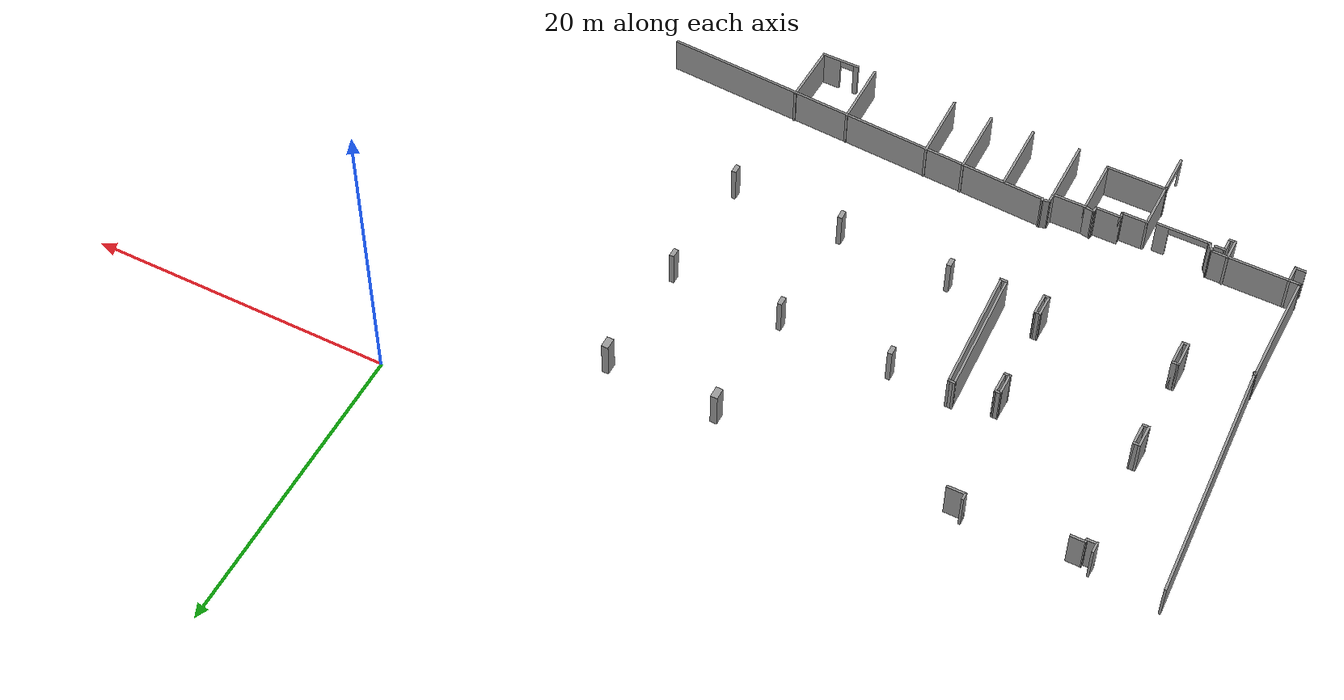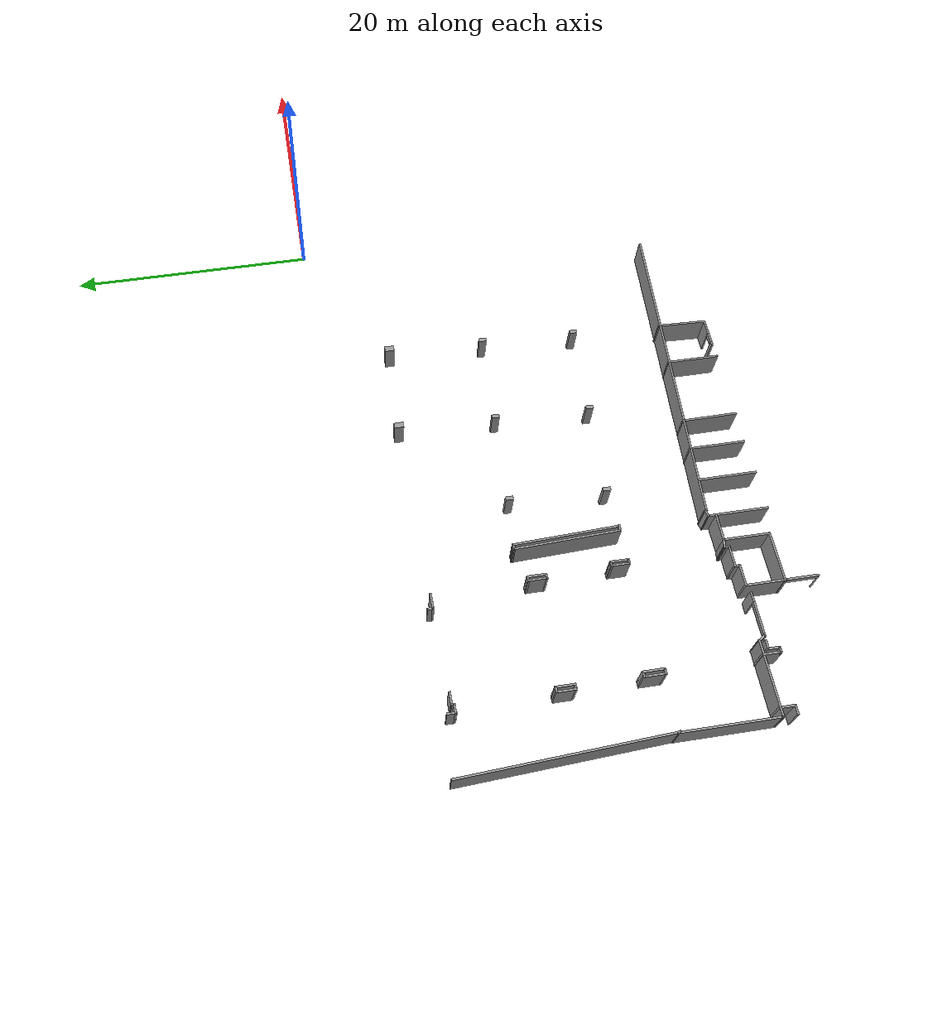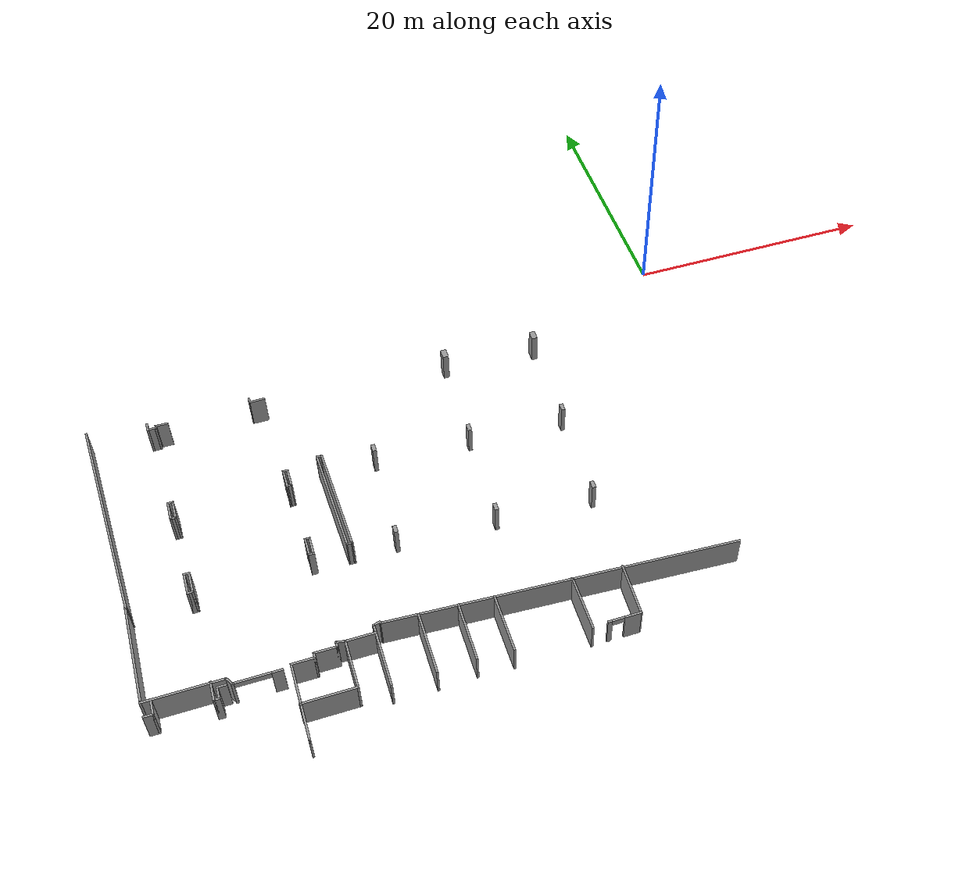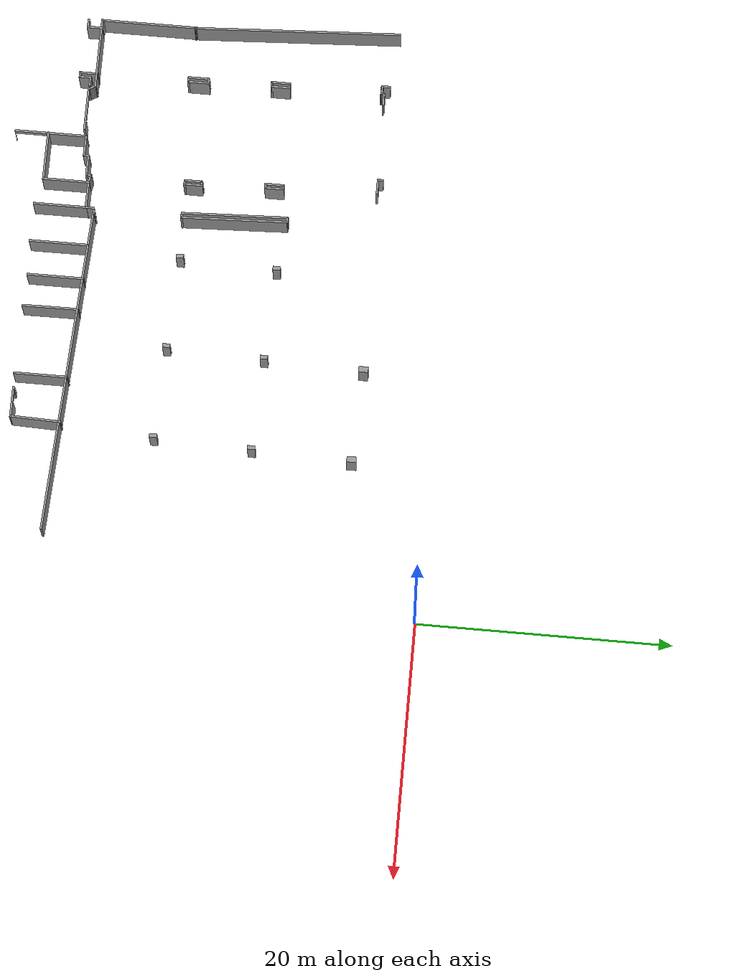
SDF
<sdf version="1.6">
 <model name="car_parking_underground_big_1">
  <pose>-9.36123 -7.37411 0 0 -0 0</pose>
  <link name="Wall_114">
   <collision name="Wall_114_Collision">
    <geometry><box><size>16.392 0.15 2.5</size></box></geometry>
    <pose>0 0 1.25 0 -0 0</pose>
   </collision>
   <visual name="Wall_114_Visual">
    <pose>0 0 1.25 0 -0 0</pose>
    <geometry><box><size>16.392 0.15 2.5</size></box></geometry>
    <material>
     <script><uri>file://media/materials/scripts/gazebo.material</uri><name>Gazebo/Grey</name></script>
     <ambient>1 1 1 1</ambient>
    </material>
    <meta><layer>0</layer></meta>
   </visual>
   <pose>-37.5898 -5.90433 0 0 -0 -1.51874</pose>
  </link>
  <link name="Wall_115">
   <collision name="Wall_115_Collision">
    <geometry><box><size>0.25 0.15 2.5</size></box></geometry>
    <pose>0 0 1.25 0 -0 0</pose>
   </collision>
   <visual name="Wall_115_Visual">
    <pose>0 0 1.25 0 -0 0</pose>
    <geometry><box><size>0.25 0.15 2.5</size></box></geometry>
    <material>
     <script><uri>file://media/materials/scripts/gazebo.material</uri><name>Gazebo/Grey</name></script>
     <ambient>1 1 1 1</ambient>
    </material>
    <meta><layer>0</layer></meta>
   </visual>
   <pose>-37.1543 -14.0626 0 0 -0 -1.309</pose>
  </link>
  <link name="Wall_116">
   <collision name="Wall_116_Collision">
    <geometry><box><size>0.25 0.15 2.5</size></box></geometry>
    <pose>0 0 1.25 0 -0 0</pose>
   </collision>
   <visual name="Wall_116_Visual">
    <pose>0 0 1.25 0 -0 0</pose>
    <geometry><box><size>0.25 0.15 2.5</size></box></geometry>
    <material>
     <script><uri>file://media/materials/scripts/gazebo.material</uri><name>Gazebo/Grey</name></script>
     <ambient>1 1 1 1</ambient>
    </material>
    <meta><layer>0</layer></meta>
   </visual>
   <pose>-37.1664 -14.0676 0 0 -0 2.0944</pose>
  </link>
  <link name="Wall_117">
   <collision name="Wall_117_Collision">
    <geometry><box><size>7.5 0.15 2.5</size></box></geometry>
    <pose>0 0 1.25 0 -0 0</pose>
   </collision>
   <visual name="Wall_117_Visual">
    <pose>0 0 1.25 0 -0 0</pose>
    <geometry><box><size>7.5 0.15 2.5</size></box></geometry>
    <material>
     <script><uri>file://media/materials/scripts/gazebo.material</uri><name>Gazebo/Grey</name></script>
     <ambient>1 1 1 1</ambient>
    </material>
    <meta><layer>0</layer></meta>
   </visual>
   <pose>-37.1914 -17.6993 0 0 -0 -1.5708</pose>
  </link>
  <link name="Wall_176">
   <collision name="Wall_176_Collision">
    <geometry><box><size>0.6 0.3 2.5</size></box></geometry>
    <pose>0 0 1.25 0 -0 0</pose>
   </collision>
   <visual name="Wall_176_Visual">
    <pose>0 0 1.25 0 -0 0</pose>
    <geometry><box><size>0.6 0.3 2.5</size></box></geometry>
    <material>
     <script><uri>file://media/materials/scripts/gazebo.material</uri><name>Gazebo/Grey</name></script>
     <ambient>1 1 1 1</ambient>
    </material>
    <meta><layer>0</layer></meta>
   </visual>
   <pose>-3.02477 -6.46489 0 0 -0 -1.5708</pose>
  </link>
  <link name="Wall_178">
   <collision name="Wall_178_Collision">
    <geometry><box><size>0.6 0.3 2.5</size></box></geometry>
    <pose>0 0 1.25 0 -0 0</pose>
   </collision>
   <visual name="Wall_178_Visual">
    <pose>0 0 1.25 0 -0 0</pose>
    <geometry><box><size>0.6 0.3 2.5</size></box></geometry>
    <material>
     <script><uri>file://media/materials/scripts/gazebo.material</uri><name>Gazebo/Grey</name></script>
     <ambient>1 1 1 1</ambient>
    </material>
    <meta><layer>0</layer></meta>
   </visual>
   <pose>-3.32656 -14.1644 0 0 -0 -1.5708</pose>
  </link>
  <link name="Wall_180">
   <collision name="Wall_180_Collision">
    <geometry><box><size>0.6 0.3 2.5</size></box></geometry>
    <pose>0 0 1.25 0 -0 0</pose>
   </collision>
   <visual name="Wall_180_Visual">
    <pose>0 0 1.25 0 -0 0</pose>
    <geometry><box><size>0.6 0.3 2.5</size></box></geometry>
    <material>
     <script><uri>file://media/materials/scripts/gazebo.material</uri><name>Gazebo/Grey</name></script>
     <ambient>1 1 1 1</ambient>
    </material>
    <meta><layer>0</layer></meta>
   </visual>
   <pose>-10.3966 -6.15368 0 0 -0 -1.5708</pose>
  </link>
  <link name="Wall_184">
   <collision name="Wall_184_Collision">
    <geometry><box><size>0.6 0.3 2.5</size></box></geometry>
    <pose>0 0 1.25 0 -0 0</pose>
   </collision>
   <visual name="Wall_184_Visual">
    <pose>0 0 1.25 0 -0 0</pose>
    <geometry><box><size>0.6 0.3 2.5</size></box></geometry>
    <material>
     <script><uri>file://media/materials/scripts/gazebo.material</uri><name>Gazebo/Grey</name></script>
     <ambient>1 1 1 1</ambient>
    </material>
    <meta><layer>0</layer></meta>
   </visual>
   <pose>-10.6831 -13.8534 0 0 -0 -1.5708</pose>
  </link>
  <link name="Wall_186">
   <collision name="Wall_186_Collision">
    <geometry><box><size>0.6 0.3 2.5</size></box></geometry>
    <pose>0 0 1.25 0 -0 0</pose>
   </collision>
   <visual name="Wall_186_Visual">
    <pose>0 0 1.25 0 -0 0</pose>
    <geometry><box><size>0.6 0.3 2.5</size></box></geometry>
    <material>
     <script><uri>file://media/materials/scripts/gazebo.material</uri><name>Gazebo/Grey</name></script>
     <ambient>1 1 1 1</ambient>
    </material>
    <meta><layer>0</layer></meta>
   </visual>
   <pose>-17.7349 -5.83126 0 0 -0 -1.5708</pose>
  </link>
  <link name="Wall_189">
   <collision name="Wall_189_Collision">
    <geometry><box><size>0.6 0.3 2.5</size></box></geometry>
    <pose>0 0 1.25 0 -0 0</pose>
   </collision>
   <visual name="Wall_189_Visual">
    <pose>0 0 1.25 0 -0 0</pose>
    <geometry><box><size>0.6 0.3 2.5</size></box></geometry>
    <material>
     <script><uri>file://media/materials/scripts/gazebo.material</uri><name>Gazebo/Grey</name></script>
     <ambient>1 1 1 1</ambient>
    </material>
    <meta><layer>0</layer></meta>
   </visual>
   <pose>-18.0746 -13.5004 0 0 -0 1.5708</pose>
  </link>
  <link name="Wall_199">
   <collision name="Wall_199_Collision">
    <geometry><box><size>0.5 0.15 2.5</size></box></geometry>
    <pose>0 0 1.25 0 -0 0</pose>
   </collision>
   <visual name="Wall_199_Visual">
    <pose>0 0 1.25 0 -0 0</pose>
    <geometry><box><size>0.5 0.15 2.5</size></box></geometry>
    <material>
     <script><uri>file://media/materials/scripts/gazebo.material</uri><name>Gazebo/Grey</name></script>
     <ambient>1 1 1 1</ambient>
    </material>
    <meta><layer>0</layer></meta>
   </visual>
   <pose>-21.7724 -5.37202 0 0 -0 -0.029577</pose>
  </link>
  <link name="Wall_200">
   <collision name="Wall_200_Collision">
    <geometry><box><size>8.48596 0.15 2.5</size></box></geometry>
    <pose>0 0 1.25 0 -0 0</pose>
   </collision>
   <visual name="Wall_200_Visual">
    <pose>0 0 1.25 0 -0 0</pose>
    <geometry><box><size>8.48596 0.15 2.5</size></box></geometry>
    <material>
     <script><uri>file://media/materials/scripts/gazebo.material</uri><name>Gazebo/Grey</name></script>
     <ambient>1 1 1 1</ambient>
    </material>
    <meta><layer>0</layer></meta>
   </visual>
   <pose>-21.4361 -9.52457 0 0 -0 -1.53208</pose>
  </link>
  <link name="Wall_201">
   <collision name="Wall_201_Collision">
    <geometry><box><size>0.5 0.15 2.5</size></box></geometry>
    <pose>0 0 1.25 0 -0 0</pose>
   </collision>
   <visual name="Wall_201_Visual">
    <pose>0 0 1.25 0 -0 0</pose>
    <geometry><box><size>0.5 0.15 2.5</size></box></geometry>
    <material>
     <script><uri>file://media/materials/scripts/gazebo.material</uri><name>Gazebo/Grey</name></script>
     <ambient>1 1 1 1</ambient>
    </material>
    <meta><layer>0</layer></meta>
   </visual>
   <pose>-21.4323 -13.6894 0 0 -0 3.14159</pose>
  </link>
  <link name="Wall_202">
   <collision name="Wall_202_Collision">
    <geometry><box><size>8.4963 0.15 2.5</size></box></geometry>
    <pose>0 0 1.25 0 -0 0</pose>
   </collision>
   <visual name="Wall_202_Visual">
    <pose>0 0 1.25 0 -0 0</pose>
    <geometry><box><size>8.4963 0.15 2.5</size></box></geometry>
    <material>
     <script><uri>file://media/materials/scripts/gazebo.material</uri><name>Gazebo/Grey</name></script>
     <ambient>1 1 1 1</ambient>
    </material>
    <meta><layer>0</layer></meta>
   </visual>
   <pose>-21.786 -9.51939 0 0 -0 1.60945</pose>
  </link>
  <link name="Wall_207">
   <collision name="Wall_207_Collision">
    <geometry><box><size>0.45 0.15 2.5</size></box></geometry>
    <pose>0 0 1.25 0 -0 0</pose>
   </collision>
   <visual name="Wall_207_Visual">
    <pose>0 0 1.25 0 -0 0</pose>
    <geometry><box><size>0.45 0.15 2.5</size></box></geometry>
    <material>
     <script><uri>file://media/materials/scripts/gazebo.material</uri><name>Gazebo/Grey</name></script>
     <ambient>1 1 1 1</ambient>
    </material>
    <meta><layer>0</layer></meta>
   </visual>
   <pose>-24.4571 -5.91874 0 0 -0 0.024395</pose>
  </link>
  <link name="Wall_208">
   <collision name="Wall_208_Collision">
    <geometry><box><size>1.54641 0.15 2.5</size></box></geometry>
    <pose>0 0 1.25 0 -0 0</pose>
   </collision>
   <visual name="Wall_208_Visual">
    <pose>0 0 1.25 0 -0 0</pose>
    <geometry><box><size>1.54641 0.15 2.5</size></box></geometry>
    <material>
     <script><uri>file://media/materials/scripts/gazebo.material</uri><name>Gazebo/Grey</name></script>
     <ambient>1 1 1 1</ambient>
    </material>
    <meta><layer>0</layer></meta>
   </visual>
   <pose>-24.2965 -6.61328 0 0 -0 -1.5721</pose>
  </link>
  <link name="Wall_209">
   <collision name="Wall_209_Collision">
    <geometry><box><size>0.45 0.15 2.5</size></box></geometry>
    <pose>0 0 1.25 0 -0 0</pose>
   </collision>
   <visual name="Wall_209_Visual">
    <pose>0 0 1.25 0 -0 0</pose>
    <geometry><box><size>0.45 0.15 2.5</size></box></geometry>
    <material>
     <script><uri>file://media/materials/scripts/gazebo.material</uri><name>Gazebo/Grey</name></script>
     <ambient>1 1 1 1</ambient>
    </material>
    <meta><layer>0</layer></meta>
   </visual>
   <pose>-24.4589 -7.31515 0 0 -0 -3.1172</pose>
  </link>
  <link name="Wall_210">
   <collision name="Wall_210_Collision">
    <geometry><box><size>1.54641 0.15 2.5</size></box></geometry>
    <pose>0 0 1.25 0 -0 0</pose>
   </collision>
   <visual name="Wall_210_Visual">
    <pose>0 0 1.25 0 -0 0</pose>
    <geometry><box><size>1.54641 0.15 2.5</size></box></geometry>
    <material>
     <script><uri>file://media/materials/scripts/gazebo.material</uri><name>Gazebo/Grey</name></script>
     <ambient>1 1 1 1</ambient>
    </material>
    <meta><layer>0</layer></meta>
   </visual>
   <pose>-24.5965 -6.6206 0 0 -0 1.56949</pose>
  </link>
  <link name="Wall_212">
   <collision name="Wall_212_Collision">
    <geometry><box><size>0.45 0.15 2.5</size></box></geometry>
    <pose>0 0 1.25 0 -0 0</pose>
   </collision>
   <visual name="Wall_212_Visual">
    <pose>0 0 1.25 0 -0 0</pose>
    <geometry><box><size>0.45 0.15 2.5</size></box></geometry>
    <material>
     <script><uri>file://media/materials/scripts/gazebo.material</uri><name>Gazebo/Grey</name></script>
     <ambient>1 1 1 1</ambient>
    </material>
    <meta><layer>0</layer></meta>
   </visual>
   <pose>-24.2099 -12.3657 0 0 -0 0</pose>
  </link>
  <link name="Wall_213">
   <collision name="Wall_213_Collision">
    <geometry><box><size>1.48852 0.15 2.5</size></box></geometry>
    <pose>0 0 1.25 0 -0 0</pose>
   </collision>
   <visual name="Wall_213_Visual">
    <pose>0 0 1.25 0 -0 0</pose>
    <geometry><box><size>1.48852 0.15 2.5</size></box></geometry>
    <material>
     <script><uri>file://media/materials/scripts/gazebo.material</uri><name>Gazebo/Grey</name></script>
     <ambient>1 1 1 1</ambient>
    </material>
    <meta><layer>0</layer></meta>
   </visual>
   <pose>-24.0521 -13.0349 0 0 -0 -1.5764</pose>
  </link>
  <link name="Wall_214">
   <collision name="Wall_214_Collision">
    <geometry><box><size>0.45 0.15 2.5</size></box></geometry>
    <pose>0 0 1.25 0 -0 0</pose>
   </collision>
   <visual name="Wall_214_Visual">
    <pose>0 0 1.25 0 -0 0</pose>
    <geometry><box><size>0.45 0.15 2.5</size></box></geometry>
    <material>
     <script><uri>file://media/materials/scripts/gazebo.material</uri><name>Gazebo/Grey</name></script>
     <ambient>1 1 1 1</ambient>
    </material>
    <meta><layer>0</layer></meta>
   </visual>
   <pose>-24.1944 -13.7157 0 0 -0 3.14159</pose>
  </link>
  <link name="Wall_215">
   <collision name="Wall_215_Collision">
    <geometry><box><size>1.48852 0.15 2.5</size></box></geometry>
    <pose>0 0 1.25 0 -0 0</pose>
   </collision>
   <visual name="Wall_215_Visual">
    <pose>0 0 1.25 0 -0 0</pose>
    <geometry><box><size>1.48852 0.15 2.5</size></box></geometry>
    <material>
     <script><uri>file://media/materials/scripts/gazebo.material</uri><name>Gazebo/Grey</name></script>
     <ambient>1 1 1 1</ambient>
    </material>
    <meta><layer>0</layer></meta>
   </visual>
   <pose>-24.3521 -13.0349 0 0 -0 1.56519</pose>
  </link>
  <link name="Wall_450">
   <collision name="Wall_450_Collision">
    <geometry><box><size>1.5 0.15 2.5</size></box></geometry>
    <pose>0 0 1.25 0 -0 0</pose>
   </collision>
   <visual name="Wall_450_Visual">
    <pose>0 0 1.25 0 -0 0</pose>
    <geometry><box><size>1.5 0.15 2.5</size></box></geometry>
    <material>
     <script><uri>file://media/materials/scripts/gazebo.material</uri><name>Gazebo/Grey</name></script>
     <ambient>1 1 1 1</ambient>
    </material>
    <meta><layer>0</layer></meta>
   </visual>
   <pose>-32.6445 -22.2111 0 0 -0 -1.5708</pose>
  </link>
  <link name="Wall_451">
   <collision name="Wall_451_Collision">
    <geometry><box><size>0.5 0.15 2.5</size></box></geometry>
    <pose>0 0 1.25 0 -0 0</pose>
   </collision>
   <visual name="Wall_451_Visual">
    <pose>0 0 1.25 0 -0 0</pose>
    <geometry><box><size>0.5 0.15 2.5</size></box></geometry>
    <material>
     <script><uri>file://media/materials/scripts/gazebo.material</uri><name>Gazebo/Grey</name></script>
     <ambient>1 1 1 1</ambient>
    </material>
    <meta><layer>0</layer></meta>
   </visual>
   <pose>-32.4695 -22.8861 0 0 -0 0</pose>
  </link>
  <link name="Wall_452">
   <collision name="Wall_452_Collision">
    <geometry><box><size>1 0.15 2.5</size></box></geometry>
    <pose>0 0 1.25 0 -0 0</pose>
   </collision>
   <visual name="Wall_452_Visual">
    <pose>0 0 1.25 0 -0 0</pose>
    <geometry><box><size>1 0.15 2.5</size></box></geometry>
    <material>
     <script><uri>file://media/materials/scripts/gazebo.material</uri><name>Gazebo/Grey</name></script>
     <ambient>1 1 1 1</ambient>
    </material>
    <meta><layer>0</layer></meta>
   </visual>
   <pose>-32.2945 -22.4611 0 0 -0 1.5708</pose>
  </link>
  <link name="Wall_453">
   <collision name="Wall_453_Collision">
    <geometry><box><size>0.75 0.15 2.5</size></box></geometry>
    <pose>0 0 1.25 0 -0 0</pose>
   </collision>
   <visual name="Wall_453_Visual">
    <pose>0 0 1.25 0 -0 0</pose>
    <geometry><box><size>0.75 0.15 2.5</size></box></geometry>
    <material>
     <script><uri>file://media/materials/scripts/gazebo.material</uri><name>Gazebo/Grey</name></script>
     <ambient>1 1 1 1</ambient>
    </material>
    <meta><layer>0</layer></meta>
   </visual>
   <pose>-31.9945 -22.0361 0 0 -0 0</pose>
  </link>
  <link name="Wall_459">
   <pose>-27.3513 -24.6777 0 0 -0 1.5708</pose>
   <visual name="Wall_459_Visual_0">
    <pose>-2.87461 0 1.25 0 -0 0</pose>
    <geometry><box><size>0.000771 0.15 2.5</size></box></geometry>
    <material>
     <script><uri>file://media/materials/scripts/gazebo.material</uri><name>Gazebo/Grey</name></script>
     <ambient>1 1 1 1</ambient>
    </material>
    <meta><layer>0</layer></meta>
   </visual>
   <collision name="Wall_459_Collision_0">
    <geometry><box><size>0.000771 0.15 2.5</size></box></geometry>
    <pose>-2.87461 0 1.25 0 -0 0</pose>
   </collision>
   <visual name="Wall_459_Visual_1">
    <pose>1.25039 0 1.25 0 -0 0</pose>
    <geometry><box><size>3.24923 0.15 2.5</size></box></geometry>
    <material>
     <script><uri>file://media/materials/scripts/gazebo.material</uri><name>Gazebo/Grey</name></script>
     <ambient>1 1 1 1</ambient>
    </material>
    <meta><layer>0</layer></meta>
   </visual>
   <collision name="Wall_459_Collision_1">
    <geometry><box><size>3.24923 0.15 2.5</size></box></geometry>
    <pose>1.25039 0 1.25 0 -0 0</pose>
   </collision>
   <visual name="Wall_459_Visual_2">
    <pose>-2.87461 0 2.25 0 -0 0</pose>
    <geometry><box><size>0.000771 0.15 0.5</size></box></geometry>
    <material>
     <script><uri>file://media/materials/scripts/gazebo.material</uri><name>Gazebo/Grey</name></script>
     <ambient>1 1 1 1</ambient>
    </material>
    <meta><layer>0</layer></meta>
   </visual>
   <collision name="Wall_459_Collision_2">
    <geometry><box><size>0.000771 0.15 0.5</size></box></geometry>
    <pose>-2.87461 0 2.25 0 -0 0</pose>
   </collision>
   <visual name="Wall_459_Visual_3">
    <pose>-1.62423 0 2.25 0 -0 0</pose>
    <geometry><box><size>2.5 0.15 0.5</size></box></geometry>
    <material>
     <script><uri>file://media/materials/scripts/gazebo.material</uri><name>Gazebo/Grey</name></script>
     <ambient>1 1 1 1</ambient>
    </material>
    <meta><layer>0</layer></meta>
   </visual>
   <collision name="Wall_459_Collision_3">
    <geometry><box><size>2.5 0.15 0.5</size></box></geometry>
    <pose>-1.62423 0 2.25 0 -0 0</pose>
   </collision>
  </link>
  <link name="Wall_604">
   <collision name="Wall_604_Collision">
    <geometry><box><size>0.75 0.45 2.5</size></box></geometry>
    <pose>0 0 1.25 0 -0 0</pose>
   </collision>
   <visual name="Wall_604_Visual">
    <pose>0 0 1.25 0 -0 0</pose>
    <geometry><box><size>0.75 0.45 2.5</size></box></geometry>
    <material>
     <script><uri>file://media/materials/scripts/gazebo.material</uri><name>Gazebo/Grey</name></script>
     <ambient>1 1 1 1</ambient>
    </material>
    <meta><layer>0</layer></meta>
   </visual>
   <pose>-10.0709 1.69356 0 0 -0 1.5708</pose>
  </link>
  <link name="Wall_606">
   <collision name="Wall_606_Collision">
    <geometry><box><size>0.75 0.45 2.5</size></box></geometry>
    <pose>0 0 1.25 0 -0 0</pose>
   </collision>
   <visual name="Wall_606_Visual">
    <pose>0 0 1.25 0 -0 0</pose>
    <geometry><box><size>0.75 0.45 2.5</size></box></geometry>
    <material>
     <script><uri>file://media/materials/scripts/gazebo.material</uri><name>Gazebo/Grey</name></script>
     <ambient>1 1 1 1</ambient>
    </material>
    <meta><layer>0</layer></meta>
   </visual>
   <pose>-2.74108 1.39356 0 0 -0 -1.5708</pose>
  </link>
  <link name="Wall_617">
   <collision name="Wall_617_Collision">
    <geometry><box><size>1.25 0.15 2.5</size></box></geometry>
    <pose>0 0 1.25 0 -0 0</pose>
   </collision>
   <visual name="Wall_617_Visual">
    <pose>0 0 1.25 0 -0 0</pose>
    <geometry><box><size>1.25 0.15 2.5</size></box></geometry>
    <material>
     <script><uri>file://media/materials/scripts/gazebo.material</uri><name>Gazebo/Grey</name></script>
     <ambient>1 1 1 1</ambient>
    </material>
    <meta><layer>0</layer></meta>
   </visual>
   <pose>-25.1446 1.50341 0 0 -0 3.14159</pose>
  </link>
  <link name="Wall_618">
   <collision name="Wall_618_Collision">
    <geometry><box><size>0.5 0.15 2.5</size></box></geometry>
    <pose>0 0 1.25 0 -0 0</pose>
   </collision>
   <visual name="Wall_618_Visual">
    <pose>0 0 1.25 0 -0 0</pose>
    <geometry><box><size>0.5 0.15 2.5</size></box></geometry>
    <material>
     <script><uri>file://media/materials/scripts/gazebo.material</uri><name>Gazebo/Grey</name></script>
     <ambient>1 1 1 1</ambient>
    </material>
    <meta><layer>0</layer></meta>
   </visual>
   <pose>-25.6946 1.67841 0 0 -0 1.5708</pose>
  </link>
  <link name="Wall_628">
   <collision name="Wall_628_Collision">
    <geometry><box><size>1 0.15 2.5</size></box></geometry>
    <pose>0 0 1.25 0 -0 0</pose>
   </collision>
   <visual name="Wall_628_Visual">
    <pose>0 0 1.25 0 -0 0</pose>
    <geometry><box><size>1 0.15 2.5</size></box></geometry>
    <material>
     <script><uri>file://media/materials/scripts/gazebo.material</uri><name>Gazebo/Grey</name></script>
     <ambient>1 1 1 1</ambient>
    </material>
    <meta><layer>0</layer></meta>
   </visual>
   <pose>-32.481 1.36011 0 0 -0 3.14159</pose>
  </link>
  <link name="Wall_629">
   <collision name="Wall_629_Collision">
    <geometry><box><size>0.355236 0.15 2.5</size></box></geometry>
    <pose>0 0 1.25 0 -0 0</pose>
   </collision>
   <visual name="Wall_629_Visual">
    <pose>0 0 1.25 0 -0 0</pose>
    <geometry><box><size>0.355236 0.15 2.5</size></box></geometry>
    <material>
     <script><uri>file://media/materials/scripts/gazebo.material</uri><name>Gazebo/Grey</name></script>
     <ambient>1 1 1 1</ambient>
    </material>
    <meta><layer>0</layer></meta>
   </visual>
   <pose>-32.9189 1.25831 0 0 -0 -1.69724</pose>
  </link>
  <link name="Wall_630">
   <collision name="Wall_630_Collision">
    <geometry><box><size>0.75 0.15 2.5</size></box></geometry>
    <pose>0 0 1.25 0 -0 0</pose>
   </collision>
   <visual name="Wall_630_Visual">
    <pose>0 0 1.25 0 -0 0</pose>
    <geometry><box><size>0.75 0.15 2.5</size></box></geometry>
    <material>
     <script><uri>file://media/materials/scripts/gazebo.material</uri><name>Gazebo/Grey</name></script>
     <ambient>1 1 1 1</ambient>
    </material>
    <meta><layer>0</layer></meta>
   </visual>
   <pose>-33.2319 1.18326 0 0 -0 3.14159</pose>
  </link>
  <link name="Wall_631">
   <collision name="Wall_631_Collision">
    <geometry><box><size>0.75 0.15 2.5</size></box></geometry>
    <pose>0 0 1.25 0 -0 0</pose>
   </collision>
   <visual name="Wall_631_Visual">
    <pose>0 0 1.25 0 -0 0</pose>
    <geometry><box><size>0.75 0.15 2.5</size></box></geometry>
    <material>
     <script><uri>file://media/materials/scripts/gazebo.material</uri><name>Gazebo/Grey</name></script>
     <ambient>1 1 1 1</ambient>
    </material>
    <meta><layer>0</layer></meta>
   </visual>
   <pose>-33.5319 1.45651 0 0 -0 1.5708</pose>
  </link>
  <link name="Wall_635">
   <collision name="Wall_635_Collision">
    <geometry><box><size>0.5 0.15 2.5</size></box></geometry>
    <pose>0 0 1.25 0 -0 0</pose>
   </collision>
   <visual name="Wall_635_Visual">
    <pose>0 0 1.25 0 -0 0</pose>
    <geometry><box><size>0.5 0.15 2.5</size></box></geometry>
    <material>
     <script><uri>file://media/materials/scripts/gazebo.material</uri><name>Gazebo/Grey</name></script>
     <ambient>1 1 1 1</ambient>
    </material>
    <meta><layer>0</layer></meta>
   </visual>
   <pose>-32.9555 -6.18755 0 0 -0 0</pose>
  </link>
  <link name="Wall_636">
   <collision name="Wall_636_Collision">
    <geometry><box><size>1.56883 0.15 2.5</size></box></geometry>
    <pose>0 0 1.25 0 -0 0</pose>
   </collision>
   <visual name="Wall_636_Visual">
    <pose>0 0 1.25 0 -0 0</pose>
    <geometry><box><size>1.56883 0.15 2.5</size></box></geometry>
    <material>
     <script><uri>file://media/materials/scripts/gazebo.material</uri><name>Gazebo/Grey</name></script>
     <ambient>1 1 1 1</ambient>
    </material>
    <meta><layer>0</layer></meta>
   </visual>
   <pose>-32.7805 -6.89696 0 0 -0 -1.5708</pose>
  </link>
  <link name="Wall_637">
   <collision name="Wall_637_Collision">
    <geometry><box><size>0.5 0.15 2.5</size></box></geometry>
    <pose>0 0 1.25 0 -0 0</pose>
   </collision>
   <visual name="Wall_637_Visual">
    <pose>0 0 1.25 0 -0 0</pose>
    <geometry><box><size>0.5 0.15 2.5</size></box></geometry>
    <material>
     <script><uri>file://media/materials/scripts/gazebo.material</uri><name>Gazebo/Grey</name></script>
     <ambient>1 1 1 1</ambient>
    </material>
    <meta><layer>0</layer></meta>
   </visual>
   <pose>-32.9555 -7.60637 0 0 -0 3.14159</pose>
  </link>
  <link name="Wall_638">
   <collision name="Wall_638_Collision">
    <geometry><box><size>1.56883 0.15 2.5</size></box></geometry>
    <pose>0 0 1.25 0 -0 0</pose>
   </collision>
   <visual name="Wall_638_Visual">
    <pose>0 0 1.25 0 -0 0</pose>
    <geometry><box><size>1.56883 0.15 2.5</size></box></geometry>
    <material>
     <script><uri>file://media/materials/scripts/gazebo.material</uri><name>Gazebo/Grey</name></script>
     <ambient>1 1 1 1</ambient>
    </material>
    <meta><layer>0</layer></meta>
   </visual>
   <pose>-33.1305 -6.89696 0 0 -0 1.5708</pose>
  </link>
  <link name="Wall_640">
   <collision name="Wall_640_Collision">
    <geometry><box><size>0.5 0.15 2.5</size></box></geometry>
    <pose>0 0 1.25 0 -0 0</pose>
   </collision>
   <visual name="Wall_640_Visual">
    <pose>0 0 1.25 0 -0 0</pose>
    <geometry><box><size>0.5 0.15 2.5</size></box></geometry>
    <material>
     <script><uri>file://media/materials/scripts/gazebo.material</uri><name>Gazebo/Grey</name></script>
     <ambient>1 1 1 1</ambient>
    </material>
    <meta><layer>0</layer></meta>
   </visual>
   <pose>-32.795 -12.6346 0 0 -0 0</pose>
  </link>
  <link name="Wall_641">
   <collision name="Wall_641_Collision">
    <geometry><box><size>1.75 0.15 2.5</size></box></geometry>
    <pose>0 0 1.25 0 -0 0</pose>
   </collision>
   <visual name="Wall_641_Visual">
    <pose>0 0 1.25 0 -0 0</pose>
    <geometry><box><size>1.75 0.15 2.5</size></box></geometry>
    <material>
     <script><uri>file://media/materials/scripts/gazebo.material</uri><name>Gazebo/Grey</name></script>
     <ambient>1 1 1 1</ambient>
    </material>
    <meta><layer>0</layer></meta>
   </visual>
   <pose>-32.62 -13.4346 0 0 -0 -1.5708</pose>
  </link>
  <link name="Wall_642">
   <collision name="Wall_642_Collision">
    <geometry><box><size>0.5 0.15 2.5</size></box></geometry>
    <pose>0 0 1.25 0 -0 0</pose>
   </collision>
   <visual name="Wall_642_Visual">
    <pose>0 0 1.25 0 -0 0</pose>
    <geometry><box><size>0.5 0.15 2.5</size></box></geometry>
    <material>
     <script><uri>file://media/materials/scripts/gazebo.material</uri><name>Gazebo/Grey</name></script>
     <ambient>1 1 1 1</ambient>
    </material>
    <meta><layer>0</layer></meta>
   </visual>
   <pose>-32.795 -14.2346 0 0 -0 3.14159</pose>
  </link>
  <link name="Wall_643">
   <collision name="Wall_643_Collision">
    <geometry><box><size>1.75 0.15 2.5</size></box></geometry>
    <pose>0 0 1.25 0 -0 0</pose>
   </collision>
   <visual name="Wall_643_Visual">
    <pose>0 0 1.25 0 -0 0</pose>
    <geometry><box><size>1.75 0.15 2.5</size></box></geometry>
    <material>
     <script><uri>file://media/materials/scripts/gazebo.material</uri><name>Gazebo/Grey</name></script>
     <ambient>1 1 1 1</ambient>
    </material>
    <meta><layer>0</layer></meta>
   </visual>
   <pose>-32.97 -13.4346 0 0 -0 1.5708</pose>
  </link>
  <link name="Wall_695">
   <collision name="Wall_695_Collision">
    <geometry><box><size>4 0.15 2.5</size></box></geometry>
    <pose>0 0 1.25 0 -0 0</pose>
   </collision>
   <visual name="Wall_695_Visual">
    <pose>0 0 1.25 0 -0 0</pose>
    <geometry><box><size>4 0.15 2.5</size></box></geometry>
    <material>
     <script><uri>file://media/materials/scripts/gazebo.material</uri><name>Gazebo/Grey</name></script>
     <ambient>1 1 1 1</ambient>
    </material>
    <meta><layer>0</layer></meta>
   </visual>
   <pose>-25.4723 -24.8956 0 0 -0 0</pose>
  </link>
  <link name="Wall_696">
   <collision name="Wall_696_Collision">
    <geometry><box><size>3.75 0.15 2.5</size></box></geometry>
    <pose>0 0 1.25 0 -0 0</pose>
   </collision>
   <visual name="Wall_696_Visual">
    <pose>0 0 1.25 0 -0 0</pose>
    <geometry><box><size>3.75 0.15 2.5</size></box></geometry>
    <material>
     <script><uri>file://media/materials/scripts/gazebo.material</uri><name>Gazebo/Grey</name></script>
     <ambient>1 1 1 1</ambient>
    </material>
    <meta><layer>0</layer></meta>
   </visual>
   <pose>-23.5473 -23.0956 0 0 -0 1.5708</pose>
  </link>
  <link name="Wall_75">
   <collision name="Wall_75_Collision">
    <geometry><box><size>25.9637 0.15 2.5</size></box></geometry>
    <pose>0 0 1.25 0 -0 0</pose>
   </collision>
   <visual name="Wall_75_Visual">
    <pose>0 0 1.25 0 -0 0</pose>
    <geometry><box><size>25.9637 0.15 2.5</size></box></geometry>
    <material>
     <script><uri>file://media/materials/scripts/gazebo.material</uri><name>Gazebo/Grey</name></script>
     <ambient>1 1 1 1</ambient>
    </material>
    <meta><layer>0</layer></meta>
   </visual>
   <pose>-8.08769 -21.3698 0 0 -0 3.08728</pose>
  </link>
  <link name="Wall_77">
   <pose>-29.6509 -22.0784 0 0 -0 3.14159</pose>
   <visual name="Wall_77_Visual_0">
    <pose>-1.349 0 1.25 0 -0 0</pose>
    <geometry><box><size>0.801998 0.15 2.5</size></box></geometry>
    <material>
     <script><uri>file://media/materials/scripts/gazebo.material</uri><name>Gazebo/Grey</name></script>
     <ambient>1 1 1 1</ambient>
    </material>
    <meta><layer>0</layer></meta>
   </visual>
   <collision name="Wall_77_Collision_0">
    <geometry><box><size>0.801998 0.15 2.5</size></box></geometry>
    <pose>-1.349 0 1.25 0 -0 0</pose>
   </collision>
   <visual name="Wall_77_Visual_1">
    <pose>1.651 0 1.25 0 -0 0</pose>
    <geometry><box><size>0.198002 0.15 2.5</size></box></geometry>
    <material>
     <script><uri>file://media/materials/scripts/gazebo.material</uri><name>Gazebo/Grey</name></script>
     <ambient>1 1 1 1</ambient>
    </material>
    <meta><layer>0</layer></meta>
   </visual>
   <collision name="Wall_77_Collision_1">
    <geometry><box><size>0.198002 0.15 2.5</size></box></geometry>
    <pose>1.651 0 1.25 0 -0 0</pose>
   </collision>
   <visual name="Wall_77_Visual_2">
    <pose>0.301998 0 2.25 0 -0 0</pose>
    <geometry><box><size>2.5 0.15 0.5</size></box></geometry>
    <material>
     <script><uri>file://media/materials/scripts/gazebo.material</uri><name>Gazebo/Grey</name></script>
     <ambient>1 1 1 1</ambient>
    </material>
    <meta><layer>0</layer></meta>
   </visual>
   <collision name="Wall_77_Collision_2">
    <geometry><box><size>2.5 0.15 0.5</size></box></geometry>
    <pose>0.301998 0 2.25 0 -0 0</pose>
   </collision>
  </link>
  <link name="Wall_773">
   <collision name="Wall_773_Collision">
    <geometry><box><size>0.75 0.15 2.5</size></box></geometry>
    <pose>0 0 1.25 0 -0 0</pose>
   </collision>
   <visual name="Wall_773_Visual">
    <pose>0 0 1.25 0 -0 0</pose>
    <geometry><box><size>0.75 0.15 2.5</size></box></geometry>
    <material>
     <script><uri>file://media/materials/scripts/gazebo.material</uri><name>Gazebo/Grey</name></script>
     <ambient>1 1 1 1</ambient>
    </material>
    <meta><layer>0</layer></meta>
   </visual>
   <pose>-36.8384 -22.6717 0 0 -0 0</pose>
  </link>
  <link name="Wall_774">
   <collision name="Wall_774_Collision">
    <geometry><box><size>1.25 0.15 2.5</size></box></geometry>
    <pose>0 0 1.25 0 -0 0</pose>
   </collision>
   <visual name="Wall_774_Visual">
    <pose>0 0 1.25 0 -0 0</pose>
    <geometry><box><size>1.25 0.15 2.5</size></box></geometry>
    <material>
     <script><uri>file://media/materials/scripts/gazebo.material</uri><name>Gazebo/Grey</name></script>
     <ambient>1 1 1 1</ambient>
    </material>
    <meta><layer>0</layer></meta>
   </visual>
   <pose>-36.5384 -22.1217 0 0 -0 1.5708</pose>
  </link>
  <link name="Wall_776">
   <collision name="Wall_776_Collision">
    <geometry><box><size>1.75 0.15 2.5</size></box></geometry>
    <pose>0 0 1.25 0 -0 0</pose>
   </collision>
   <visual name="Wall_776_Visual">
    <pose>0 0 1.25 0 -0 0</pose>
    <geometry><box><size>1.75 0.15 2.5</size></box></geometry>
    <material>
     <script><uri>file://media/materials/scripts/gazebo.material</uri><name>Gazebo/Grey</name></script>
     <ambient>1 1 1 1</ambient>
    </material>
    <meta><layer>0</layer></meta>
   </visual>
   <pose>-26.5513 -21.8777 0 0 -0 0</pose>
  </link>
  <link name="Wall_777">
   <collision name="Wall_777_Collision">
    <geometry><box><size>0.5 0.15 2.5</size></box></geometry>
    <pose>0 0 1.25 0 -0 0</pose>
   </collision>
   <visual name="Wall_777_Visual">
    <pose>0 0 1.25 0 -0 0</pose>
    <geometry><box><size>0.5 0.15 2.5</size></box></geometry>
    <material>
     <script><uri>file://media/materials/scripts/gazebo.material</uri><name>Gazebo/Grey</name></script>
     <ambient>1 1 1 1</ambient>
    </material>
    <meta><layer>0</layer></meta>
   </visual>
   <pose>-25.7513 -21.7027 0 0 -0 1.5708</pose>
  </link>
  <link name="Wall_778">
   <collision name="Wall_778_Collision">
    <geometry><box><size>1.75 0.15 2.5</size></box></geometry>
    <pose>0 0 1.25 0 -0 0</pose>
   </collision>
   <visual name="Wall_778_Visual">
    <pose>0 0 1.25 0 -0 0</pose>
    <geometry><box><size>1.75 0.15 2.5</size></box></geometry>
    <material>
     <script><uri>file://media/materials/scripts/gazebo.material</uri><name>Gazebo/Grey</name></script>
     <ambient>1 1 1 1</ambient>
    </material>
    <meta><layer>0</layer></meta>
   </visual>
   <pose>-24.9513 -21.5277 0 0 -0 0</pose>
  </link>
  <link name="Wall_779">
   <collision name="Wall_779_Collision">
    <geometry><box><size>0.5 0.15 2.5</size></box></geometry>
    <pose>0 0 1.25 0 -0 0</pose>
   </collision>
   <visual name="Wall_779_Visual">
    <pose>0 0 1.25 0 -0 0</pose>
    <geometry><box><size>0.5 0.15 2.5</size></box></geometry>
    <material>
     <script><uri>file://media/materials/scripts/gazebo.material</uri><name>Gazebo/Grey</name></script>
     <ambient>1 1 1 1</ambient>
    </material>
    <meta><layer>0</layer></meta>
   </visual>
   <pose>-24.1513 -21.3527 0 0 -0 1.5708</pose>
  </link>
  <link name="Wall_78">
   <collision name="Wall_78_Collision">
    <geometry><box><size>0.681424 0.15 2.5</size></box></geometry>
    <pose>0 0 1.25 0 -0 0</pose>
   </collision>
   <visual name="Wall_78_Visual">
    <pose>0 0 1.25 0 -0 0</pose>
    <geometry><box><size>0.681424 0.15 2.5</size></box></geometry>
    <material>
     <script><uri>file://media/materials/scripts/gazebo.material</uri><name>Gazebo/Grey</name></script>
     <ambient>1 1 1 1</ambient>
    </material>
    <meta><layer>0</layer></meta>
   </visual>
   <pose>-31.4667 -21.8129 0 0 -0 2.12925</pose>
  </link>
  <link name="Wall_780">
   <collision name="Wall_780_Collision">
    <geometry><box><size>0.765349 0.15 2.5</size></box></geometry>
    <pose>0 0 1.25 0 -0 0</pose>
   </collision>
   <visual name="Wall_780_Visual">
    <pose>0 0 1.25 0 -0 0</pose>
    <geometry><box><size>0.765349 0.15 2.5</size></box></geometry>
    <material>
     <script><uri>file://media/materials/scripts/gazebo.material</uri><name>Gazebo/Grey</name></script>
     <ambient>1 1 1 1</ambient>
    </material>
    <meta><layer>0</layer></meta>
   </visual>
   <pose>-23.8493 -21.2366 0 0 -0 -0.192789</pose>
  </link>
  <link name="Wall_781">
   <collision name="Wall_781_Collision">
    <geometry><box><size>2.25 0.15 2.5</size></box></geometry>
    <pose>0 0 1.25 0 -0 0</pose>
   </collision>
   <visual name="Wall_781_Visual">
    <pose>0 0 1.25 0 -0 0</pose>
    <geometry><box><size>2.25 0.15 2.5</size></box></geometry>
    <material>
     <script><uri>file://media/materials/scripts/gazebo.material</uri><name>Gazebo/Grey</name></script>
     <ambient>1 1 1 1</ambient>
    </material>
    <meta><layer>0</layer></meta>
   </visual>
   <pose>-22.4973 -21.2956 0 0 -0 0</pose>
  </link>
  <link name="Wall_782">
   <collision name="Wall_782_Collision">
    <geometry><box><size>0.75 0.15 2.5</size></box></geometry>
    <pose>0 0 1.25 0 -0 0</pose>
   </collision>
   <visual name="Wall_782_Visual">
    <pose>0 0 1.25 0 -0 0</pose>
    <geometry><box><size>0.75 0.15 2.5</size></box></geometry>
    <material>
     <script><uri>file://media/materials/scripts/gazebo.material</uri><name>Gazebo/Grey</name></script>
     <ambient>1 1 1 1</ambient>
    </material>
    <meta><layer>0</layer></meta>
   </visual>
   <pose>-21.4473 -20.9956 0 0 -0 1.5708</pose>
  </link>
  <link name="Wall_783">
   <collision name="Wall_783_Collision">
    <geometry><box><size>0.612615 0.15 2.5</size></box></geometry>
    <pose>0 0 1.25 0 -0 0</pose>
   </collision>
   <visual name="Wall_783_Visual">
    <pose>0 0 1.25 0 -0 0</pose>
    <geometry><box><size>0.612615 0.15 2.5</size></box></geometry>
    <material>
     <script><uri>file://media/materials/scripts/gazebo.material</uri><name>Gazebo/Grey</name></script>
     <ambient>1 1 1 1</ambient>
    </material>
    <meta><layer>0</layer></meta>
   </visual>
   <pose>-21.2244 -20.634 0 0 -0 0.269291</pose>
  </link>
  <link name="Wall_784">
   <collision name="Wall_784_Collision">
    <geometry><box><size>0.25 0.15 2.5</size></box></geometry>
    <pose>0 0 1.25 0 -0 0</pose>
   </collision>
   <visual name="Wall_784_Visual">
    <pose>0 0 1.25 0 -0 0</pose>
    <geometry><box><size>0.25 0.15 2.5</size></box></geometry>
    <material>
     <script><uri>file://media/materials/scripts/gazebo.material</uri><name>Gazebo/Grey</name></script>
     <ambient>1 1 1 1</ambient>
    </material>
    <meta><layer>0</layer></meta>
   </visual>
   <pose>-20.9884 -20.6208 0 0 -0 -1.309</pose>
  </link>
  <link name="Wall_786">
   <collision name="Wall_786_Collision">
    <geometry><box><size>4.25 0.15 2.5</size></box></geometry>
    <pose>0 0 1.25 0 -0 0</pose>
   </collision>
   <visual name="Wall_786_Visual">
    <pose>0 0 1.25 0 -0 0</pose>
    <geometry><box><size>4.25 0.15 2.5</size></box></geometry>
    <material>
     <script><uri>file://media/materials/scripts/gazebo.material</uri><name>Gazebo/Grey</name></script>
     <ambient>1 1 1 1</ambient>
    </material>
    <meta><layer>0</layer></meta>
   </visual>
   <pose>-21.4473 -23.3456 0 0 -0 -1.5708</pose>
  </link>
  <link name="Wall_79">
   <collision name="Wall_79_Collision">
    <geometry><box><size>5.75 0.15 2.5</size></box></geometry>
    <pose>0 0 1.25 0 -0 0</pose>
   </collision>
   <visual name="Wall_79_Visual">
    <pose>0 0 1.25 0 -0 0</pose>
    <geometry><box><size>5.75 0.15 2.5</size></box></geometry>
    <material>
     <script><uri>file://media/materials/scripts/gazebo.material</uri><name>Gazebo/Grey</name></script>
     <ambient>1 1 1 1</ambient>
    </material>
    <meta><layer>0</layer></meta>
   </visual>
   <pose>-34.4075 -21.5875 0 0 -0 3.14159</pose>
  </link>
  <link name="Wall_791">
   <pose>-5.12232 -25.3956 0 0 -0 0</pose>
   <visual name="Wall_791_Visual_0">
    <pose>-1.08594 0 1.25 0 -0 0</pose>
    <geometry><box><size>0.328122 0.15 2.5</size></box></geometry>
    <material>
     <script><uri>file://media/materials/scripts/gazebo.material</uri><name>Gazebo/Grey</name></script>
     <ambient>1 1 1 1</ambient>
    </material>
    <meta><layer>0</layer></meta>
   </visual>
   <collision name="Wall_791_Collision_0">
    <geometry><box><size>0.328122 0.15 2.5</size></box></geometry>
    <pose>-1.08594 0 1.25 0 -0 0</pose>
   </collision>
   <visual name="Wall_791_Visual_1">
    <pose>0.614061 0 1.25 0 -0 0</pose>
    <geometry><box><size>1.27188 0.15 2.5</size></box></geometry>
    <material>
     <script><uri>file://media/materials/scripts/gazebo.material</uri><name>Gazebo/Grey</name></script>
     <ambient>1 1 1 1</ambient>
    </material>
    <meta><layer>0</layer></meta>
   </visual>
   <collision name="Wall_791_Collision_1">
    <geometry><box><size>1.27188 0.15 2.5</size></box></geometry>
    <pose>0.614061 0 1.25 0 -0 0</pose>
   </collision>
   <visual name="Wall_791_Visual_2">
    <pose>-0.471878 0 2.25 0 -0 0</pose>
    <geometry><box><size>0.9 0.15 0.5</size></box></geometry>
    <material>
     <script><uri>file://media/materials/scripts/gazebo.material</uri><name>Gazebo/Grey</name></script>
     <ambient>1 1 1 1</ambient>
    </material>
    <meta><layer>0</layer></meta>
   </visual>
   <collision name="Wall_791_Collision_2">
    <geometry><box><size>0.9 0.15 0.5</size></box></geometry>
    <pose>-0.471878 0 2.25 0 -0 0</pose>
   </collision>
  </link>
  <link name="Wall_796">
   <collision name="Wall_796_Collision">
    <geometry><box><size>4.029 0.15 2.5</size></box></geometry>
    <pose>0 0 1.25 0 -0 0</pose>
   </collision>
   <visual name="Wall_796_Visual">
    <pose>0 0 1.25 0 -0 0</pose>
    <geometry><box><size>4.029 0.15 2.5</size></box></geometry>
    <material>
     <script><uri>file://media/materials/scripts/gazebo.material</uri><name>Gazebo/Grey</name></script>
     <ambient>1 1 1 1</ambient>
    </material>
    <meta><layer>0</layer></meta>
   </visual>
   <pose>-3.87882 -23.4573 0 0 -0 -1.60613</pose>
  </link>
  <link name="Wall_80">
   <collision name="Wall_80_Collision">
    <geometry><box><size>0.15 0.15 2.5</size></box></geometry>
    <pose>0 0 1.25 0 -0 0</pose>
   </collision>
   <visual name="Wall_80_Visual">
    <pose>0 0 1.25 0 -0 0</pose>
    <geometry><box><size>0.15 0.15 2.5</size></box></geometry>
    <material>
     <script><uri>file://media/materials/scripts/gazebo.material</uri><name>Gazebo/Grey</name></script>
     <ambient>1 1 1 1</ambient>
    </material>
    <meta><layer>0</layer></meta>
   </visual>
   <pose>-37.2075 -21.5875 0 0 -0 0</pose>
  </link>
  <link name="Wall_800">
   <collision name="Wall_800_Collision">
    <geometry><box><size>4.72384 0.15 2.5</size></box></geometry>
    <pose>0 0 1.25 0 -0 0</pose>
   </collision>
   <visual name="Wall_800_Visual">
    <pose>0 0 1.25 0 -0 0</pose>
    <geometry><box><size>4.72384 0.15 2.5</size></box></geometry>
    <material>
     <script><uri>file://media/materials/scripts/gazebo.material</uri><name>Gazebo/Grey</name></script>
     <ambient>1 1 1 1</ambient>
    </material>
    <meta><layer>0</layer></meta>
   </visual>
   <pose>-18.3517 -23.1086 0 0 -0 -1.56889</pose>
  </link>
  <link name="Wall_802">
   <collision name="Wall_802_Collision">
    <geometry><box><size>4.5 0.15 2.5</size></box></geometry>
    <pose>0 0 1.25 0 -0 0</pose>
   </collision>
   <visual name="Wall_802_Visual">
    <pose>0 0 1.25 0 -0 0</pose>
    <geometry><box><size>4.5 0.15 2.5</size></box></geometry>
    <material>
     <script><uri>file://media/materials/scripts/gazebo.material</uri><name>Gazebo/Grey</name></script>
     <ambient>1 1 1 1</ambient>
    </material>
    <meta><layer>0</layer></meta>
   </visual>
   <pose>-15.5711 -23.1049 0 0 -0 -1.5708</pose>
  </link>
  <link name="Wall_804">
   <collision name="Wall_804_Collision">
    <geometry><box><size>4.48062 0.15 2.5</size></box></geometry>
    <pose>0 0 1.25 0 -0 0</pose>
   </collision>
   <visual name="Wall_804_Visual">
    <pose>0 0 1.25 0 -0 0</pose>
    <geometry><box><size>4.48062 0.15 2.5</size></box></geometry>
    <material>
     <script><uri>file://media/materials/scripts/gazebo.material</uri><name>Gazebo/Grey</name></script>
     <ambient>1 1 1 1</ambient>
    </material>
    <meta><layer>0</layer></meta>
   </visual>
   <pose>-13.0135 -23.2303 0 0 -0 -1.56334</pose>
  </link>
  <link name="Wall_806">
   <collision name="Wall_806_Collision">
    <geometry><box><size>4.25 0.15 2.5</size></box></geometry>
    <pose>0 0 1.25 0 -0 0</pose>
   </collision>
   <visual name="Wall_806_Visual">
    <pose>0 0 1.25 0 -0 0</pose>
    <geometry><box><size>4.25 0.15 2.5</size></box></geometry>
    <material>
     <script><uri>file://media/materials/scripts/gazebo.material</uri><name>Gazebo/Grey</name></script>
     <ambient>1 1 1 1</ambient>
    </material>
    <meta><layer>0</layer></meta>
   </visual>
   <pose>-7.45981 -23.4125 0 0 -0 -1.5708</pose>
  </link>
  <static>1</static>
 </model>
</sdf>
